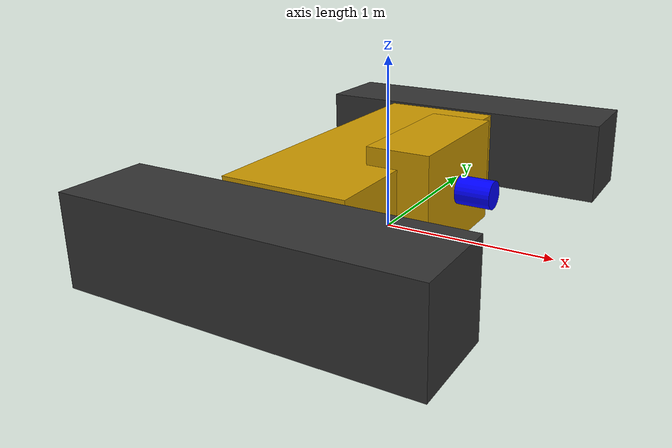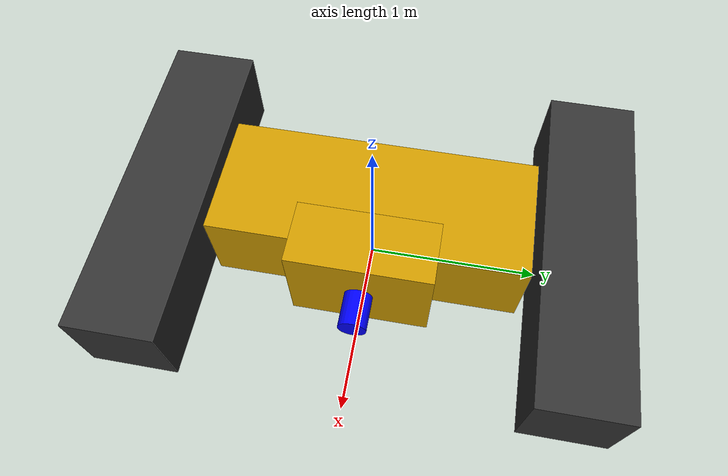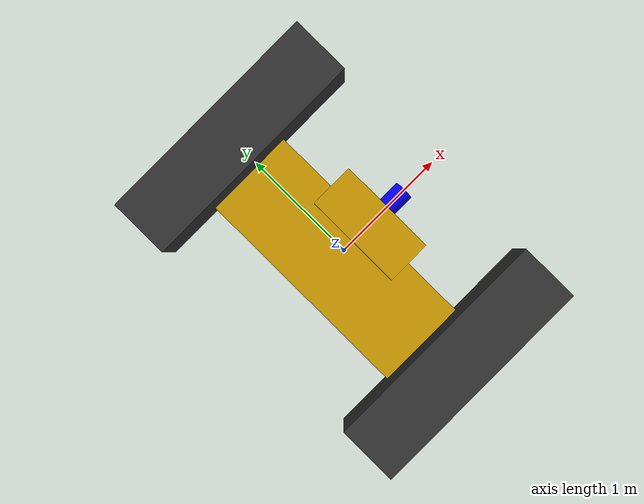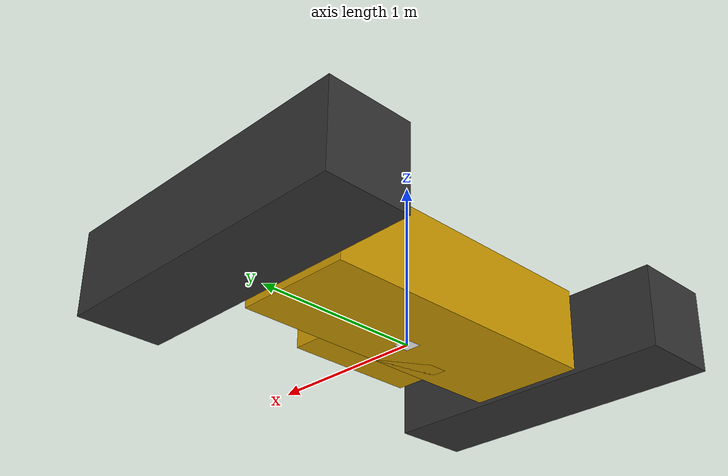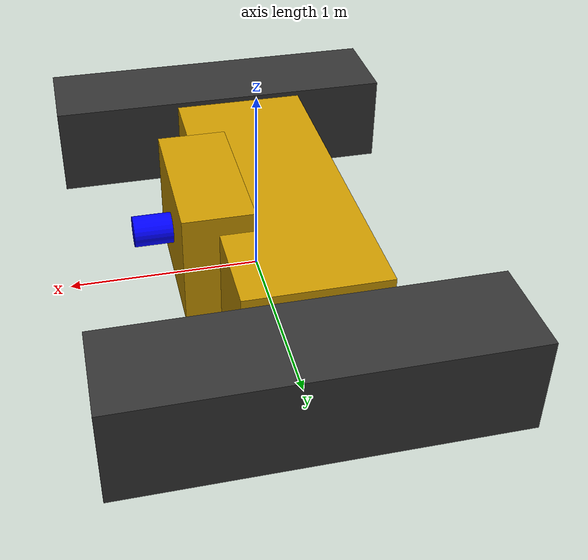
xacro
<?xml version="1.0"?>
<robot name="dual_track" xmlns:xacro="http://www.ros.org/wiki/xacro">

  <material name="dark_grey"><color rgba="0.2 0.2 0.2 1.0"/></material>
  <material name="industrial_yellow"><color rgba="0.8 0.6 0.0 1.0"/></material>
  <material name="white"><color rgba="1 1 1 1"/></material>
  <material name="blue"><color rgba="0 0 1 1"/></material>

  <xacro:property name="track_dist" value="2.4"/>     <xacro:property name="track_len" value="1.925"/>
  <xacro:property name="track_h" value="0.5"/>
  <xacro:property name="track_w" value="0.5"/>

  <xacro:property name="base_l" value="0.9"/>
  <xacro:property name="base_w" value="1.8"/>        <xacro:property name="base_h" value="0.5"/>
  <xacro:property name="mass" value="7000.0"/>

  <xacro:macro name="inertial_box" params="mass x y z">
    <inertial>
      <origin xyz="0 0 0" rpy="0 0 0"/>
      <mass value="${mass}"/>
      <inertia
        ixx="${(1.0/12.0) * mass * (y*y + z*z)}" ixy="0" ixz="0"
        iyy="${(1.0/12.0) * mass * (x*x + z*z)}" iyz="0"
        izz="${(1.0/12.0) * mass * (x*x + y*y)}"/>
    </inertial>
  </xacro:macro>

  <link name="base_link">
    <visual>
      <origin xyz="${-base_l*0.1} 0 ${(base_h*0.5)}"/>
      <geometry><box size="${base_l*0.8} ${base_w} ${base_h}"/></geometry>
      <material name="industrial_yellow"/>
    </visual>

    <visual>
      <origin xyz="${base_l*0.3} 0 ${(base_h*1.2)*0.5}" rpy="0 0 0"/>
      <geometry>
        <box size="${base_l*0.4} 0.8 ${base_h*1.2}"/>
      </geometry>
      <material name="industrial_yellow"/>
    </visual>

    <visual>
      <origin xyz="${base_l*0.5} 0 ${base_h*0.6}" rpy="0 1.57 0"/>
      <geometry>
        <cylinder length="0.4" radius="0.08"/>
      </geometry>
      <material name="blue"/>
    </visual>

    <collision>
      <origin xyz="0 0 ${(base_h*0.5)}"/>
      <geometry><box size="${base_l} ${base_w} ${base_h}"/></geometry>
    </collision>
    <xacro:inertial_box mass="${mass}" x="${base_l}" y="${base_w}" z="${base_h}"/>
  </link>

  <link name="left_track">
    <visual>
      <geometry><box size="${track_len} ${track_w} ${track_h}"/></geometry>
      <material name="dark_grey"/>
    </visual>
    <collision>
      <geometry><box size="${track_len} ${track_w} ${track_h}"/></geometry>
    </collision>
    <xacro:inertial_box mass="50.0" x="${track_len}" y="${track_w}" z="${track_h}"/>
  </link>

  <joint name="left_track_joint" type="fixed">
    <parent link="base_link"/>
    <child link="left_track"/>
    <origin xyz="0 ${(track_dist*0.5)} ${(track_h*0.5)}"/>
  </joint>

  <link name="right_track">
    <visual>
      <geometry><box size="${track_len} ${track_w} ${track_h}"/></geometry>
      <material name="dark_grey"/>
    </visual>
    <collision>
      <geometry><box size="${track_len} ${track_w} ${track_h}"/></geometry>
    </collision>
    <xacro:inertial_box mass="50.0" x="${track_len}" y="${track_w}" z="${track_h}"/>
  </link>

  <joint name="right_track_joint" type="fixed">
    <parent link="base_link"/>
    <child link="right_track"/>
    <origin xyz="0 ${-(track_dist*0.5)} ${(track_h*0.5)}"/>
  </joint>

  <link name="base_footprint">
    <visual>
      <geometry><box size="0.1 0.1 0.001"/></geometry>
      <material name="white"/>
    </visual>
  </link>

  <joint name="base_link_to_base_footprint" type="fixed">
    <parent link="base_link"/>
    <child link="base_footprint"/>
    <origin xyz="0 0 0" rpy="0 0 0"/>
  </joint>

</robot>
